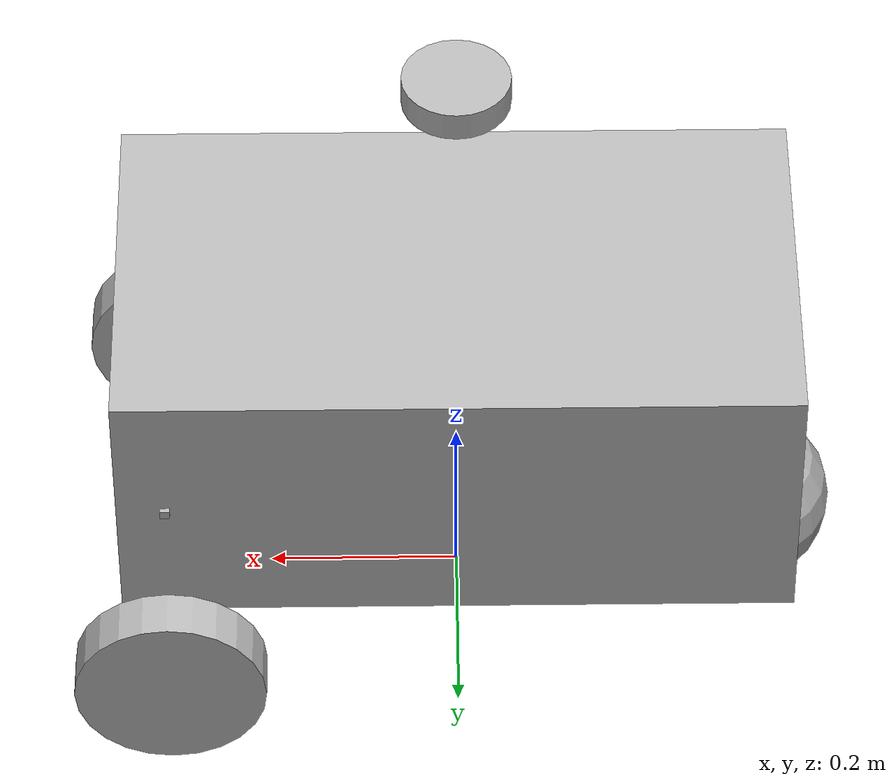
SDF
<?xml version='1.0'?>
<sdf version='1.5'>
    <model name='model'>

        <link name='chassis_link'>
            <pose>0 0 0.3 0 0 0</pose>
            <visual name = 'visual'>
                <geometry>
                    <box>
                        <size>0.7 0.4 0.3</size>
                    </box>
                </geometry>
                <material>
                    <script>Gazebo/FlatBlack</script>
                </material>
            </visual>
            <collision name ='collision'>
                <geometry>
                    <box>
                        <size>0.7 0.4 0.3</size>
                    </box>
                </geometry>
            </collision>
            <inertial>
                <pose>0 0 0 0 0 0</pose>
                <mass>10</mass>
                <inertia>
                    <ixx>0</ixx>
                    <iyy>0</iyy>
                    <izz>0</izz>
                </inertia>
            </inertial>

            <collision name='caster_collision'>
                <pose>-0.3 0 -0.2 0 0 0</pose>
                <geometry>
                    <sphere>
                        <radius>0.1</radius>
                    </sphere>
                </geometry>

                <surface>
                    <friction>
                        <ode>
                            <mu>0</mu>
                            <mu2>0</mu2>
                        </ode>
                    </friction>
                </surface>
            </collision>

            <visual name='caster_visual'>
                <pose>-0.3 0 -0.2 0 0 0</pose>
                <geometry>
                    <sphere>
                        <radius>0.1</radius>
                    </sphere>
                </geometry>
            </visual>
        </link>

        <link name='left_wheel_link'>
            <pose>0.3 -0.25 0.1 0 1.5707 1.5707</pose>
            <visual name = 'left_wheel_visual'>
                <geometry>
                    <cylinder>
                        <radius>0.1</radius>
                        <length>0.05</length>
                    </cylinder>
                </geometry>
                <material>
                    <script>Gazebo/DarkYellow</script>
                </material>
            </visual>
            <collision name = 'left_wheel_collision'>
                <geometry>
                    <cylinder>
                        <radius>0.1</radius>
                        <length>0.05</length>
                    </cylinder>
                </geometry>
                <surface>
                    <friction>
                        <ode>
                            <mu>0.1</mu>
                            <mu2>0.1</mu2>
                            <fdir1>1 0 0</fdir1>
                        </ode>
                    </friction>
                    <contact>
                        <ode>
                            <kp>500000.000000</kp>
                            <kd>10.000000</kd>
                            <max_vel>0.1</max_vel>
                            <min_depth>0.001</min_depth>
                        </ode>
                    </contact>
                </surface>
            </collision>
        </link>
        <link name='right_wheel_link'>
            <pose>0.3 0.25 0.1 0 1.5707 1.5707</pose>
            <visual name = 'right_wheel_visual'>
                <geometry>
                    <cylinder>
                        <radius>0.1</radius>
                        <length>0.05</length>
                    </cylinder>
                </geometry>
                <material>
                    <script>Gazebo/DarkYellow</script>
                </material>
            </visual>

            <collision name = 'right_wheel_collision'>
                <geometry>
                    <cylinder>
                        <radius>0.1</radius>
                        <length>0.05</length>
                    </cylinder>
                </geometry>
                <surface>
                    <friction>
                        <ode>
                            <mu>0.1</mu>
                            <mu2>0.1</mu2>
                            <fdir1>1 0 0</fdir1>
                        </ode>
                    </friction>
                    <contact>
                        <ode>
                            <kp>500000.000000</kp>
                            <kd>10.000000</kd>
                            <max_vel>0.1</max_vel>
                            <min_depth>0.001</min_depth>
                        </ode>
                    </contact>
                </surface>
            </collision>
        </link>

        <joint type='revolute' name='left_wheel_joint'>
            <parent>chassis_link</parent>
            <child>left_wheel_link</child>
            <pose>0 0 0 0 0 0</pose>
            <axis>
                <use_parent_model_frame>true</use_parent_model_frame>
                <xyz>0 1 0</xyz>
            </axis>
        </joint>
        <joint type='revolute' name='right_wheel_joint'>
            <parent>chassis_link</parent>
            <child>right_wheel_link</child>
            <pose>0 0 0 0 0 0</pose>
            <axis>
                <use_parent_model_frame>true</use_parent_model_frame>
                <xyz>0 1 0</xyz>
            </axis>
        </joint>
        <plugin name="tergeo_controller" filename="libgazebo_ros_diff_drive.so">
            <commandTopic>cmd_vel</commandTopic>
            <odometryTopic>odom</odometryTopic>
            <odometryFrame>odom</odometryFrame>
            <odometrySource>world</odometrySource>
            <publishOdomTF>true</publishOdomTF>
            <robotBaseFrame>world</robotBaseFrame>
            <publishWheelTF>false</publishWheelTF>
            <publishTf>true</publishTf>
            <publishWheelJointState>true</publishWheelJointState>
            <legacyMode>false</legacyMode>
            <updateRate>30</updateRate>
            <leftJoint>left_wheel_joint</leftJoint>
            <rightJoint>right_wheel_joint</rightJoint>
            <wheelSeparation>0.45</wheelSeparation>
            <wheelDiameter>0.2</wheelDiameter>
            <wheelAcceleration>1</wheelAcceleration>
            <wheelTorque>10</wheelTorque>
            <rosDebugLevel>na</rosDebugLevel>
        </plugin>
        <link name ='imu_link'>
            <pose>0 0 0.3 0 0 0</pose>
            <visual name = 'imu_visual'>
                <geometry>
                    <cylinder>
                        <radius>0.1</radius>
                        <length>0.05</length>
                    </cylinder>
                </geometry>
                <material>
                    <script>Gazebo/FlatBlack</script>
                </material>
            </visual>
            <sensor type="imu" name='imu_sensor'>
                <always_on>true</always_on>
                <visualize>false</visualize>
                <plugin filename="libgazebo_ros_imu_sensor.so" name="imu_plugin">
                    <topicName>/sensor/imu/center/pose</topicName>
                    <bodyName>imu_link</bodyName>
                    <frameName>imu_link</frameName>
                    <serviceName>imu_service</serviceName>
                    <gaussianNoise>0.0</gaussianNoise>
                    <updateRateHZ>60</updateRateHZ>
                    <xyzOffset>0 0 0</xyzOffset>
                    <rpyOffset>0 0 0</rpyOffset>
                </plugin>
                <imu>
                    <linear_acceleration>
                        <x>
                            <noise type='gaussian'>
                                <mean>0.0</mean>
                                <stddev>2e-4</stddev>
                                <bias_mean>0.0000075</bias_mean>
                                <bias_stddev>0.0000008</bias_stddev>
                            </noise>
                        </x>
                    </linear_acceleration>
                </imu>
            </sensor>
        </link>
        <joint type="fixed" name="imu_joint">
            <parent>chassis_link</parent>
            <child>imu_link</child>
            <pose>0 0 0 0 0 0</pose>
        </joint>
        <!-- sonar -->
        <link name="left_sonar_link">
            <pose>0.3 -0.2 0.3 0 0 0</pose>
            <visual name ='left_sonar_visual'>
                <geometry>
                    <box>
                        <size>0.01 0.01 0.01</size>
                    </box>
                </geometry>
            </visual>

            <collision name ='left_sonar_collision'>
                <geometry>
                    <box>
                        <size>0.01 0.01 0.01</size>
                    </box>
                </geometry>
            </collision>

            <inertial>
                <pose>0 0 0 0 0 0</pose>
                <mass>0.1</mass>
                <inertia>
                    <ixx>0</ixx>
                    <iyy>0</iyy>
                    <izz>0</izz>
                </inertia>
            </inertial>

            <sensor type="ray" name="left_sonar_sensor">
                <pose>0 0 0 0 0 0</pose>
                <visualize>true</visualize>
                <update_rate>5</update_rate>
                <ray>
                    <scan>
                        <horizontal>
                            <samples>5</samples>
                            <resolution>1.0</resolution>
                            <min_angle>-0.1309</min_angle>
                            <max_angle>0.1309</max_angle>
                        </horizontal>
                        <vertical>
                            <samples>5</samples>
                            <resolution>1</resolution>
                            <min_angle>-0.1309</min_angle>
                            <max_angle>0.1309</max_angle>
                        </vertical>
                    </scan>
                    <range>
                        <min>0.1</min>
                        <max>0.3</max>
                        <resolution>0.01</resolution>
                    </range>
                </ray>
                <plugin name="left_sonar_plugin" filename="libgazebo_ros_range.so">
                    <gaussianNoise>0.005</gaussianNoise>
                    <alwaysOn>true</alwaysOn>
                    <updateRate>5</updateRate>
                    <topicName>left_sonar_sensor</topicName>
                    <frameName>left_sonar_link</frameName>
                    <fov>0.2618</fov>
                    <radiation>ultrasound</radiation>
                </plugin>
            </sensor>
        </link>
        <joint type="fixed" name ='left_sonar_joint'>
            <parent>chassis_link</parent>
            <child>left_sonar_link</child>
            <pose>0 0 0 0 0 0</pose>
        </joint>

        <link name="right_sonar_link">
            <pose>0.3 0.2 0.3 0 0 0</pose>
            <visual name ='right_sonar_visual'>
                <geometry>
                    <box>
                        <size>0.01 0.01 0.01</size>
                    </box>
                </geometry>
            </visual>

            <collision name ='right_sonar_collision'>
                <geometry>
                    <box>
                        <size>0.01 0.01 0.01</size>
                    </box>
                </geometry>
            </collision>

            <inertial>
                <pose>0 0 0 0 0 0</pose>
                <mass>0.1</mass>
                <inertia>
                    <ixx>0</ixx>
                    <iyy>0</iyy>
                    <izz>0</izz>
                </inertia>
            </inertial>

            <sensor type="ray" name="right_sonar_sensor">
                <pose>0 0 0 0 0 0</pose>
                <visualize>true</visualize>
                <update_rate>5</update_rate>
                <ray>
                    <scan>
                        <horizontal>
                            <samples>5</samples>
                            <resolution>1.0</resolution>
                            <min_angle>-0.1309</min_angle>
                            <max_angle>0.1309</max_angle>
                        </horizontal>
                        <vertical>
                            <samples>5</samples>
                            <resolution>1</resolution>
                            <min_angle>-0.1309</min_angle>
                            <max_angle>0.1309</max_angle>
                        </vertical>
                    </scan>
                    <range>
                        <min>0.1</min>
                        <max>0.3</max>
                        <resolution>0.01</resolution>
                    </range>
                </ray>
                <plugin name="right_sonar_plugin" filename="libgazebo_ros_range.so">
                    <gaussianNoise>0.005</gaussianNoise>
                    <alwaysOn>true</alwaysOn>
                    <updateRate>5</updateRate>
                    <topicName>right_sonar_sensor</topicName>
                    <frameName>right_sonar_link</frameName>
                    <fov>0.2618</fov>
                    <radiation>ultrasound</radiation>
                </plugin>
            </sensor>
        </link>
        <joint type="fixed" name ='right_sonar_joint'>
            <parent>chassis_link</parent>
            <child>right_sonar_link</child>
            <pose>0 0 0 0 0 0</pose>
        </joint>

        <!-- lidar -->
        <link name="lidar_link">
            <pose>0 0 0.7 0 0 0</pose>
            <visual name = 'lidar_visual'>
                <geometry>
                    <cylinder>
                        <radius>0.055</radius>
                        <length>0.0315</length>
                    </cylinder>
                </geometry>
                <material>
                    <script>Gazebo/Purple</script>
                </material>
            </visual>

            <collision name ='lidar_collision'>
                <geometry>
                    <cylinder>
                        <radius>0.055</radius>
                        <length>0.0315</length>
                    </cylinder>
                </geometry>
            </collision>

            <inertial>
                <pose>0 0 0 0 0 0</pose>
                <mass>0.1</mass>
                <inertia>
                    <ixx>0</ixx>
                    <iyy>0</iyy>
                    <izz>0</izz>
                </inertia>
            </inertial>
            <sensor type="ray" name="laser_16">
                <pose>0 0 0 0 0 0</pose>
                <always_on>true</always_on>
                <visualize>true</visualize>
                <update_rate>10</update_rate>
                <ray>
                    <scan>
                        <horizontal>
                            <samples>2100</samples>
                            <resolution>1</resolution>
                            <min_angle>-3.1415</min_angle>
                            <max_angle>3.1415</max_angle>
                        </horizontal>
                        <vertical>
                            <samples>16</samples>
                            <resolution>1</resolution>
                            <min_angle>-0.2618</min_angle>
                            <max_angle>0.2618</max_angle>
                        </vertical>
                    </scan>
                    <range>
                        <min>0.2</min>
                        <max>100</max>
                        <resolution>0.02</resolution>
                    </range>
                    <noise>
                        <type>gaussian</type>
                        <mean>0.0</mean>
                        <stddev>0.0</stddev>
                    </noise>
                </ray>
                <plugin name="lidar_sensor" filename="libgazebo_ros_velodyne_laser.so">
                    <robotNamespace>model</robotNamespace>
                    <topicName>/sensor/lidar16/top/pointcloud</topicName>
                    <frameName>top_lidar16_link</frameName>
                    <min_range>0.2</min_range>
                    <max_range>100</max_range>
                    <gaussianNoise>0.02</gaussianNoise>
                </plugin>
            </sensor>
        </link>
        <joint type="fixed" name ='lidar_joint'>
            <parent>chassis_link</parent>
            <child>lidar_link</child>
            <pose>0 0 0 0 0 0</pose>
        </joint>
    </model>
</sdf>
